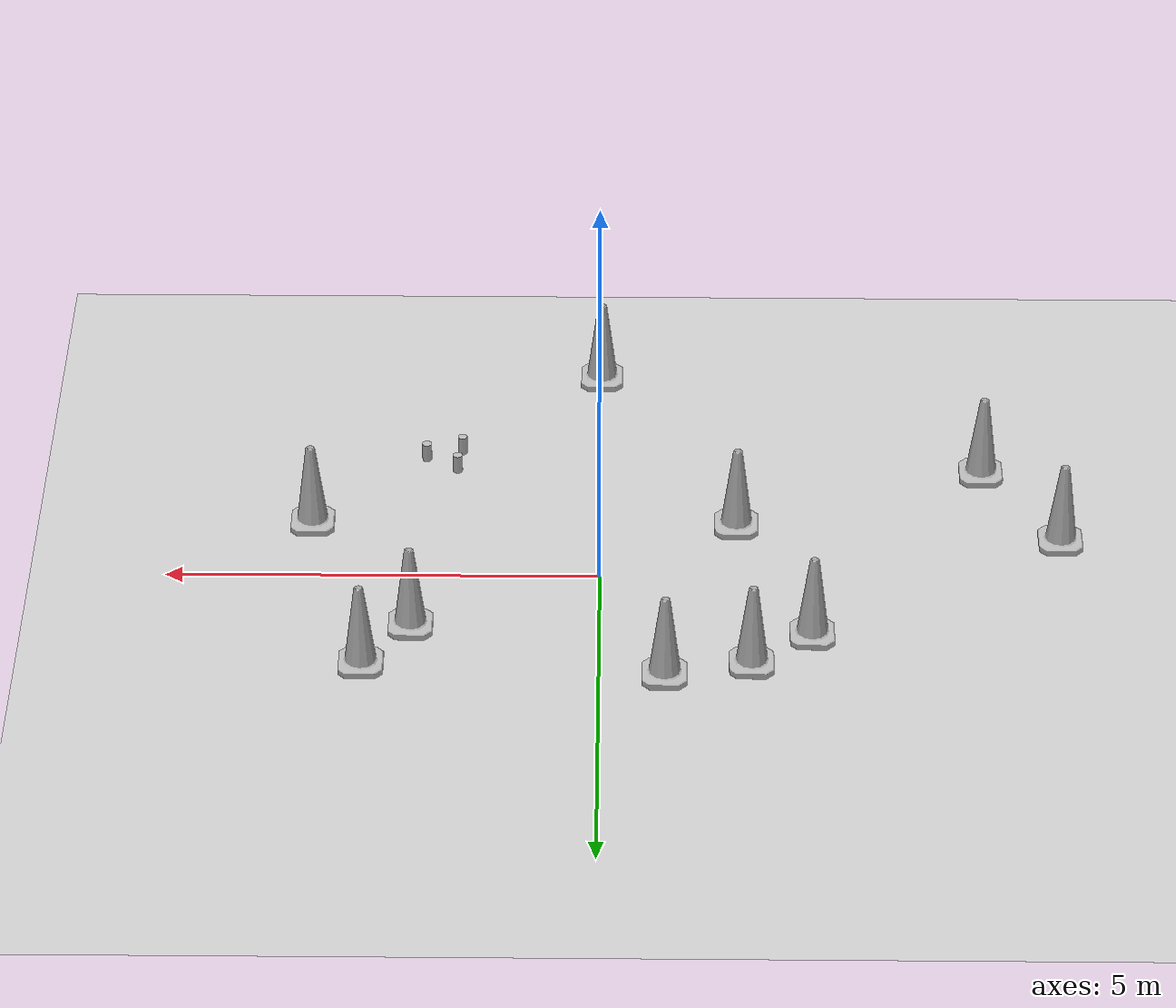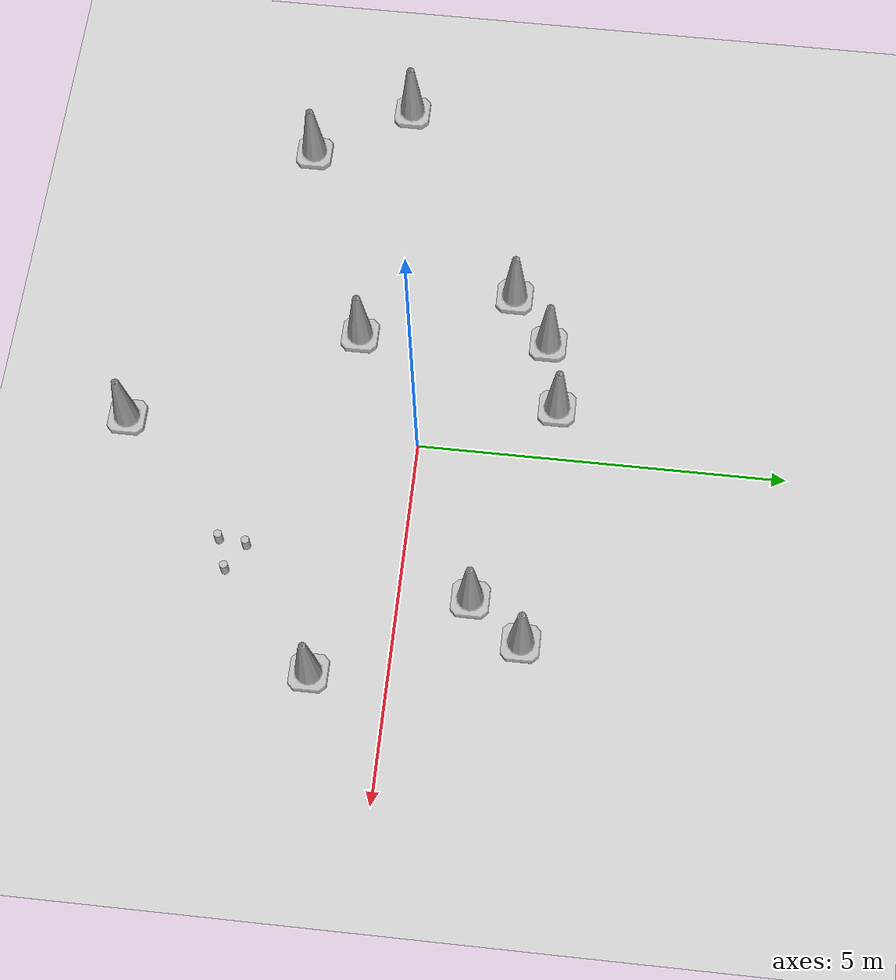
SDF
<sdf version="1.7">
 <world name="default">
  <light name="sun" type="directional">
   <pose>0 0 10 0 -0 0</pose>
   <diffuse>0.8 0.8 0.8 1</diffuse>
   <specular>0.2 0.2 0.2 1</specular>
   <attenuation>
    <range>1000</range>
    <constant>0.9</constant>
    <linear>0.01</linear>
    <quadratic>0.001</quadratic>
   </attenuation>
   <direction>-0.5 0.1 -0.9</direction>
   <spot><inner_angle>0</inner_angle><outer_angle>0</outer_angle><falloff>0</falloff></spot>
  </light>
  <model name="ground_plane">
   <static>1</static>
   <link name="link">
    <collision name="collision">
     <geometry><plane><normal>0 0 1</normal><size>100 100</size></plane></geometry>
     <surface>
      <contact><collide_bitmask>65535</collide_bitmask></contact>
      <friction><ode><mu>100</mu><mu2>50</mu2></ode></friction>
     </surface>
    </collision>
    <visual name="visual">
     <cast_shadows>0</cast_shadows>
     <geometry><plane><normal>0 0 1</normal><size>100 100</size></plane></geometry>
     <material>
      <script><uri>file://media/materials/scripts/gazebo.material</uri><name>Gazebo/Grey</name></script>
     </material>
    </visual>
   </link>
  </model>
  <gravity>0 0 -9.8</gravity>
  <magnetic_field>6e-06 2.3e-05 -4.2e-05</magnetic_field>
  <atmosphere type="adiabatic"/>
  <physics type="ode">
   <max_step_size>0.001</max_step_size>
   <real_time_factor>1</real_time_factor>
   <real_time_update_rate>1000</real_time_update_rate>
  </physics>
  <scene><ambient>0.4 0.4 0.4 1</ambient><background>0.7 0.7 0.7 1</background><shadows>1</shadows></scene>
  <audio><device>default</device></audio>
  <spherical_coordinates>
   <surface_model>EARTH_WGS84</surface_model>
   <latitude_deg>0</latitude_deg>
   <longitude_deg>0</longitude_deg>
   <elevation>0</elevation>
   <heading_deg>0</heading_deg>
  </spherical_coordinates>
  <model name="beer">
   <link name="link">
    <pose>0 0 0.115 0 -0 0</pose>
    <inertial>
     <mass>0.39</mass>
     <inertia><ixx>0.00058</ixx><ixy>0</ixy><ixz>0</ixz><iyy>0.00058</iyy><iyz>0</iyz><izz>0.00019</izz></inertia>
    </inertial>
    <collision name="collision">
     <geometry><cylinder><radius>0.055</radius><length>0.23</length></cylinder></geometry>
    </collision>
    <visual name="visual">
     <geometry><cylinder><radius>0.055</radius><length>0.23</length></cylinder></geometry>
     <material>
      <script>
       <uri>model://beer/materials/scripts</uri>
       <uri>model://beer/materials/textures</uri>
       <name>Beer/Diffuse</name>
      </script>
     </material>
    </visual>
   </link>
   <pose>1.6511 -2.46017 -7e-06 0 0 -1.9e-05</pose>
  </model>
  <model name="beer_0">
   <link name="link">
    <pose>0 0 0.115 0 -0 0</pose>
    <inertial>
     <mass>0.39</mass>
     <inertia><ixx>0.00058</ixx><ixy>0</ixy><ixz>0</ixz><iyy>0.00058</iyy><iyz>0</iyz><izz>0.00019</izz></inertia>
    </inertial>
    <collision name="collision">
     <geometry><cylinder><radius>0.055</radius><length>0.23</length></cylinder></geometry>
    </collision>
    <visual name="visual">
     <geometry><cylinder><radius>0.055</radius><length>0.23</length></cylinder></geometry>
     <material>
      <script>
       <uri>model://beer/materials/scripts</uri>
       <uri>model://beer/materials/textures</uri>
       <name>Beer/Diffuse</name>
      </script>
     </material>
    </visual>
   </link>
   <pose>1.69832 -2.08671 -2e-06 1e-06 0 -1.8e-05</pose>
  </model>
  <model name="beer_1">
   <link name="link">
    <pose>0 0 0.115 0 -0 0</pose>
    <inertial>
     <mass>0.39</mass>
     <inertia><ixx>0.00058</ixx><ixy>0</ixy><ixz>0</ixz><iyy>0.00058</iyy><iyz>0</iyz><izz>0.00019</izz></inertia>
    </inertial>
    <collision name="collision">
     <geometry><cylinder><radius>0.055</radius><length>0.23</length></cylinder></geometry>
    </collision>
    <visual name="visual">
     <geometry><cylinder><radius>0.055</radius><length>0.23</length></cylinder></geometry>
     <material>
      <script>
       <uri>model://beer/materials/scripts</uri>
       <uri>model://beer/materials/textures</uri>
       <name>Beer/Diffuse</name>
      </script>
     </material>
    </visual>
   </link>
   <pose>2.07153 -2.31554 -7e-06 -0 -0 -1.7e-05</pose>
  </model>
  <model name="Construction Cone">
   <link name="link">
    <collision name="collision">
     <geometry>
      <mesh><scale>10 10 10</scale><uri>model://construction_cone/meshes/construction_cone.dae</uri></mesh>
     </geometry>
    </collision>
    <visual name="visual">
     <geometry>
      <mesh><scale>10 10 10</scale><uri>model://construction_cone/meshes/construction_cone.dae</uri></mesh>
     </geometry>
    </visual>
    <inertial>
     <inertia><ixx>1</ixx><ixy>0</ixy><ixz>0</ixz><iyy>1</iyy><iyz>0</iyz><izz>1</izz></inertia>
     <mass>1</mass>
    </inertial>
   </link>
   <pose>3.36088 -1.01321 -0 0 -1e-06 0</pose>
  </model>
  <model name="Construction Cone_0">
   <link name="link">
    <collision name="collision">
     <geometry>
      <mesh><scale>10 10 10</scale><uri>model://construction_cone/meshes/construction_cone.dae</uri></mesh>
     </geometry>
    </collision>
    <visual name="visual">
     <geometry>
      <mesh><scale>10 10 10</scale><uri>model://construction_cone/meshes/construction_cone.dae</uri></mesh>
     </geometry>
    </visual>
    <inertial>
     <inertia><ixx>1</ixx><ixy>0</ixy><ixz>0</ixz><iyy>1</iyy><iyz>0</iyz><izz>1</izz></inertia>
     <mass>1</mass>
    </inertial>
   </link>
   <pose>-1.58858 -1 -0 0 -0 0</pose>
  </model>
  <model name="Construction Cone_0_clone">
   <link name="link">
    <collision name="collision">
     <geometry>
      <mesh><scale>10 10 10</scale><uri>model://construction_cone/meshes/construction_cone.dae</uri></mesh>
     </geometry>
    </collision>
    <visual name="visual">
     <geometry>
      <mesh><scale>10 10 10</scale><uri>model://construction_cone/meshes/construction_cone.dae</uri></mesh>
     </geometry>
    </visual>
    <inertial>
     <inertia><ixx>1</ixx><ixy>0</ixy><ixz>0</ixz><iyy>1</iyy><iyz>0</iyz><izz>1</izz></inertia>
     <mass>1</mass>
    </inertial>
   </link>
   <pose>-2.41941 1.08388 -0 -0 -0 -0</pose>
  </model>
  <model name="Construction Cone_0_clone_0">
   <link name="link">
    <collision name="collision">
     <geometry>
      <mesh><scale>10 10 10</scale><uri>model://construction_cone/meshes/construction_cone.dae</uri></mesh>
     </geometry>
    </collision>
    <visual name="visual">
     <geometry>
      <mesh><scale>10 10 10</scale><uri>model://construction_cone/meshes/construction_cone.dae</uri></mesh>
     </geometry>
    </visual>
    <inertial>
     <inertia><ixx>1</ixx><ixy>0</ixy><ixz>0</ixz><iyy>1</iyy><iyz>0</iyz><izz>1</izz></inertia>
     <mass>1</mass>
    </inertial>
   </link>
   <pose>-0.742812 1.82994 -0 0 -1e-06 0</pose>
  </model>
  <model name="Construction Cone_0_clone_1">
   <link name="link">
    <collision name="collision">
     <geometry>
      <mesh><scale>10 10 10</scale><uri>model://construction_cone/meshes/construction_cone.dae</uri></mesh>
     </geometry>
    </collision>
    <visual name="visual">
     <geometry>
      <mesh><scale>10 10 10</scale><uri>model://construction_cone/meshes/construction_cone.dae</uri></mesh>
     </geometry>
    </visual>
    <inertial>
     <inertia><ixx>1</ixx><ixy>0</ixy><ixz>0</ixz><iyy>1</iyy><iyz>0</iyz><izz>1</izz></inertia>
     <mass>1</mass>
    </inertial>
   </link>
   <pose>-1.72293 1.621 -0 0 -1e-06 0</pose>
  </model>
  <model name="Construction Cone_0_clone_2">
   <link name="link">
    <collision name="collision">
     <geometry>
      <mesh><scale>10 10 10</scale><uri>model://construction_cone/meshes/construction_cone.dae</uri></mesh>
     </geometry>
    </collision>
    <visual name="visual">
     <geometry>
      <mesh><scale>10 10 10</scale><uri>model://construction_cone/meshes/construction_cone.dae</uri></mesh>
     </geometry>
    </visual>
    <inertial>
     <inertia><ixx>1</ixx><ixy>0</ixy><ixz>0</ixz><iyy>1</iyy><iyz>0</iyz><izz>1</izz></inertia>
     <mass>1</mass>
    </inertial>
   </link>
   <pose>2.67466 1.66349 -0 1e-06 -0 0</pose>
  </model>
  <model name="Construction Cone_0_clone_3">
   <link name="link">
    <collision name="collision">
     <geometry>
      <mesh><scale>10 10 10</scale><uri>model://construction_cone/meshes/construction_cone.dae</uri></mesh>
     </geometry>
    </collision>
    <visual name="visual">
     <geometry>
      <mesh><scale>10 10 10</scale><uri>model://construction_cone/meshes/construction_cone.dae</uri></mesh>
     </geometry>
    </visual>
    <inertial>
     <inertia><ixx>1</ixx><ixy>0</ixy><ixz>0</ixz><iyy>1</iyy><iyz>0</iyz><izz>1</izz></inertia>
     <mass>1</mass>
    </inertial>
   </link>
   <pose>2.14226 0.949562 -0 0 -0 0</pose>
  </model>
  <model name="Construction Cone_0_clone_4">
   <link name="link">
    <collision name="collision">
     <geometry>
      <mesh><scale>10 10 10</scale><uri>model://construction_cone/meshes/construction_cone.dae</uri></mesh>
     </geometry>
    </collision>
    <visual name="visual">
     <geometry>
      <mesh><scale>10 10 10</scale><uri>model://construction_cone/meshes/construction_cone.dae</uri></mesh>
     </geometry>
    </visual>
    <inertial>
     <inertia><ixx>1</ixx><ixy>0</ixy><ixz>0</ixz><iyy>1</iyy><iyz>0</iyz><izz>1</izz></inertia>
     <mass>1</mass>
    </inertial>
   </link>
   <pose>-5.35372 -0.720235 -0 0 -1e-06 0</pose>
  </model>
  <model name="Construction Cone_0_clone_5">
   <link name="link">
    <collision name="collision">
     <geometry>
      <mesh><scale>10 10 10</scale><uri>model://construction_cone/meshes/construction_cone.dae</uri></mesh>
     </geometry>
    </collision>
    <visual name="visual">
     <geometry>
      <mesh><scale>10 10 10</scale><uri>model://construction_cone/meshes/construction_cone.dae</uri></mesh>
     </geometry>
    </visual>
    <inertial>
     <inertia><ixx>1</ixx><ixy>0</ixy><ixz>0</ixz><iyy>1</iyy><iyz>0</iyz><izz>1</izz></inertia>
     <mass>1</mass>
    </inertial>
   </link>
   <pose>-4.50004 -2.05589 -1e-05 0 -0 0</pose>
  </model>
  <model name="Construction Cone_0_clone_6">
   <link name="link">
    <collision name="collision">
     <geometry>
      <mesh><scale>10 10 10</scale><uri>model://construction_cone/meshes/construction_cone.dae</uri></mesh>
     </geometry>
    </collision>
    <visual name="visual">
     <geometry>
      <mesh><scale>10 10 10</scale><uri>model://construction_cone/meshes/construction_cone.dae</uri></mesh>
     </geometry>
    </visual>
    <inertial>
     <inertia><ixx>1</ixx><ixy>0</ixy><ixz>0</ixz><iyy>1</iyy><iyz>0</iyz><izz>1</izz></inertia>
     <mass>1</mass>
    </inertial>
   </link>
   <pose>-0 -4 -0 0 -0 0</pose>
  </model>
 </world>
</sdf>
